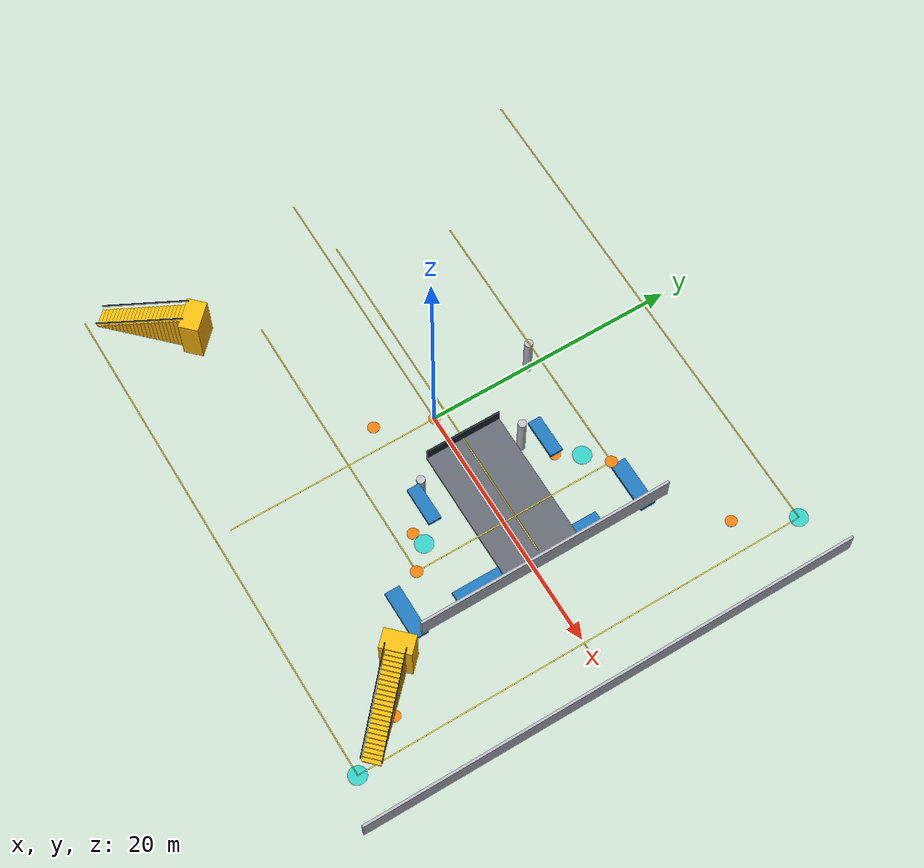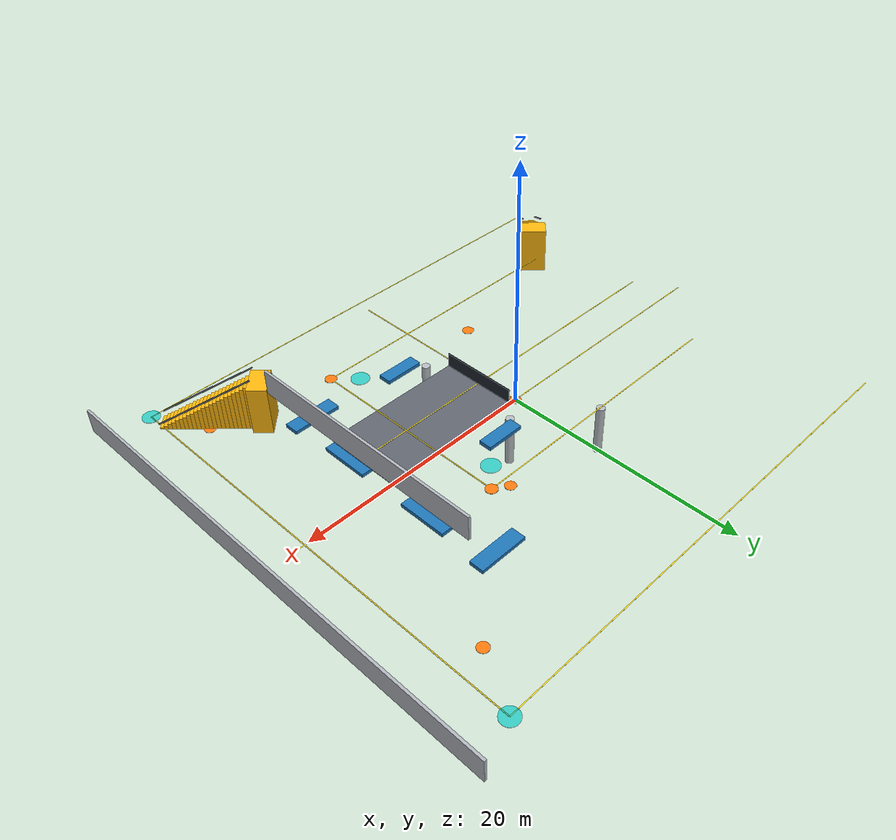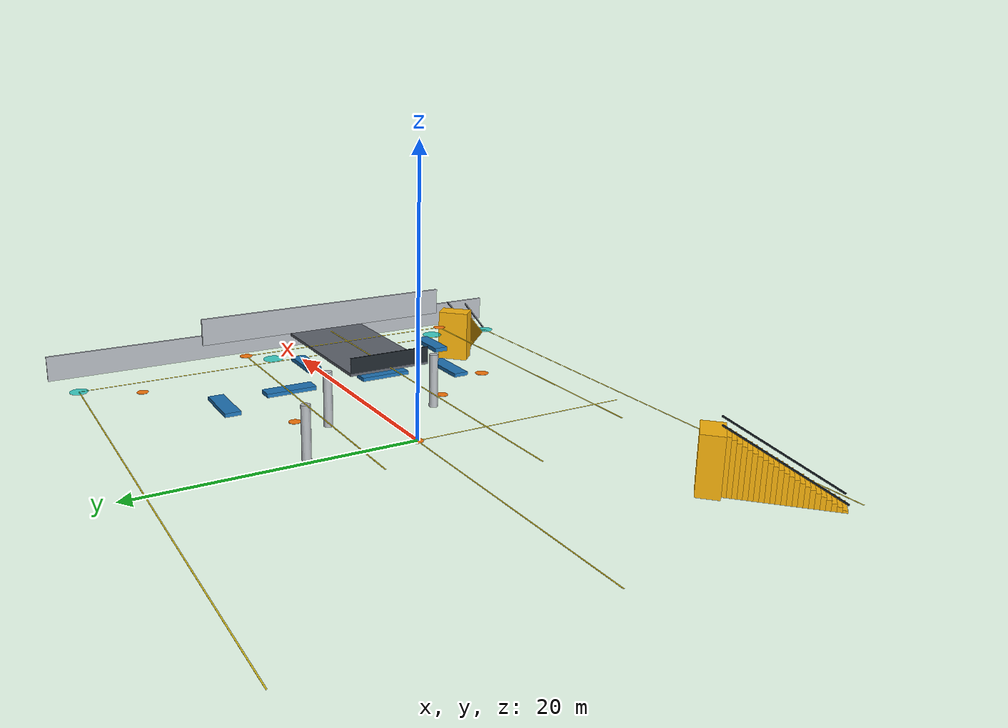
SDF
<sdf version="1.7">
 <world name="two_floor_warehouse">
  <model name="floor2_east">
   <static>true</static>
   <pose>9.5000 0.0000 3.9000 0.0000 0.0000 0.0000</pose>
   <link name="link">
    <collision name="collision"><geometry><box><size>11.0 6.0 0.2</size></box></geometry></collision>
    <visual name="visual">
     <geometry><box><size>11.0 6.0 0.2</size></box></geometry>
     <material><ambient>.38 .40 .44 1</ambient><diffuse>.38 .40 .44 1</diffuse></material>
    </visual>
   </link>
  </model>
  <model name="atrium_rail_east">
   <static>true</static>
   <pose>4.0000 0.0000 4.5500 0.0000 0.0000 0.0000</pose>
   <link name="link">
    <collision name="collision"><geometry><box><size>0.08 6.0 1.1</size></box></geometry></collision>
    <visual name="visual">
     <geometry><box><size>0.08 6.0 1.1</size></box></geometry>
     <material><ambient>.12 .15 .18 1</ambient><diffuse>.12 .15 .18 1</diffuse></material>
    </visual>
   </link>
  </model>
  <model name="f1_wall_e">
   <static>true</static>
   <pose>24.0000 0.0000 1.0000 0.0000 0.0000 0.0000</pose>
   <link name="link">
    <collision name="collision"><geometry><box><size>0.2 40.0 2</size></box></geometry></collision>
    <visual name="visual">
     <geometry><box><size>0.2 40.0 2</size></box></geometry>
     <material><ambient>.7 .72 .75 1</ambient><diffuse>.7 .72 .75 1</diffuse></material>
    </visual>
   </link>
  </model>
  <model name="f2_wall_e">
   <static>true</static>
   <pose>15.0000 0.0000 5.0000 0.0000 0.0000 0.0000</pose>
   <link name="link">
    <collision name="collision"><geometry><box><size>0.2 20.0 2</size></box></geometry></collision>
    <visual name="visual">
     <geometry><box><size>0.2 20.0 2</size></box></geometry>
     <material><ambient>.7 .72 .75 1</ambient><diffuse>.7 .72 .75 1</diffuse></material>
    </visual>
   </link>
  </model>
  <model name="stair_sw">
   <static>true</static>
   <link name="step_01">
    <pose>-19.9849 -16.9849 0.0833 0 0 0.785398</pose>
    <collision name="collision"><geometry><box><size>0.3080 1.4000 0.1667</size></box></geometry></collision>
    <visual name="visual">
     <geometry><box><size>0.3080 1.4000 0.1667</size></box></geometry>
     <material><ambient>1.0 0.72 0.05 1</ambient><diffuse>1.0 0.72 0.05 1</diffuse></material>
    </visual>
   </link>
   <link name="step_02">
    <pose>-19.7728 -16.7728 0.1667 0 0 0.785398</pose>
    <collision name="collision"><geometry><box><size>0.3080 1.4000 0.3333</size></box></geometry></collision>
    <visual name="visual">
     <geometry><box><size>0.3080 1.4000 0.3333</size></box></geometry>
     <material><ambient>1.0 0.72 0.05 1</ambient><diffuse>1.0 0.72 0.05 1</diffuse></material>
    </visual>
   </link>
   <link name="step_03">
    <pose>-19.5607 -16.5607 0.2500 0 0 0.785398</pose>
    <collision name="collision"><geometry><box><size>0.3080 1.4000 0.5000</size></box></geometry></collision>
    <visual name="visual">
     <geometry><box><size>0.3080 1.4000 0.5000</size></box></geometry>
     <material><ambient>1.0 0.72 0.05 1</ambient><diffuse>1.0 0.72 0.05 1</diffuse></material>
    </visual>
   </link>
   <link name="step_04">
    <pose>-19.3486 -16.3486 0.3333 0 0 0.785398</pose>
    <collision name="collision"><geometry><box><size>0.3080 1.4000 0.6667</size></box></geometry></collision>
    <visual name="visual">
     <geometry><box><size>0.3080 1.4000 0.6667</size></box></geometry>
     <material><ambient>1.0 0.72 0.05 1</ambient><diffuse>1.0 0.72 0.05 1</diffuse></material>
    </visual>
   </link>
   <link name="step_05">
    <pose>-19.1364 -16.1364 0.4167 0 0 0.785398</pose>
    <collision name="collision"><geometry><box><size>0.3080 1.4000 0.8333</size></box></geometry></collision>
    <visual name="visual">
     <geometry><box><size>0.3080 1.4000 0.8333</size></box></geometry>
     <material><ambient>1.0 0.72 0.05 1</ambient><diffuse>1.0 0.72 0.05 1</diffuse></material>
    </visual>
   </link>
   <link name="step_06">
    <pose>-18.9243 -15.9243 0.5000 0 0 0.785398</pose>
    <collision name="collision"><geometry><box><size>0.3080 1.4000 1.0000</size></box></geometry></collision>
    <visual name="visual">
     <geometry><box><size>0.3080 1.4000 1.0000</size></box></geometry>
     <material><ambient>1.0 0.72 0.05 1</ambient><diffuse>1.0 0.72 0.05 1</diffuse></material>
    </visual>
   </link>
   <link name="step_07">
    <pose>-18.7122 -15.7122 0.5833 0 0 0.785398</pose>
    <collision name="collision"><geometry><box><size>0.3080 1.4000 1.1667</size></box></geometry></collision>
    <visual name="visual">
     <geometry><box><size>0.3080 1.4000 1.1667</size></box></geometry>
     <material><ambient>1.0 0.72 0.05 1</ambient><diffuse>1.0 0.72 0.05 1</diffuse></material>
    </visual>
   </link>
   <link name="step_08">
    <pose>-18.5001 -15.5001 0.6667 0 0 0.785398</pose>
    <collision name="collision"><geometry><box><size>0.3080 1.4000 1.3333</size></box></geometry></collision>
    <visual name="visual">
     <geometry><box><size>0.3080 1.4000 1.3333</size></box></geometry>
     <material><ambient>1.0 0.72 0.05 1</ambient><diffuse>1.0 0.72 0.05 1</diffuse></material>
    </visual>
   </link>
   <link name="step_09">
    <pose>-18.2879 -15.2879 0.7500 0 0 0.785398</pose>
    <collision name="collision"><geometry><box><size>0.3080 1.4000 1.5000</size></box></geometry></collision>
    <visual name="visual">
     <geometry><box><size>0.3080 1.4000 1.5000</size></box></geometry>
     <material><ambient>1.0 0.72 0.05 1</ambient><diffuse>1.0 0.72 0.05 1</diffuse></material>
    </visual>
   </link>
   <link name="step_10">
    <pose>-18.0758 -15.0758 0.8333 0 0 0.785398</pose>
    <collision name="collision"><geometry><box><size>0.3080 1.4000 1.6667</size></box></geometry></collision>
    <visual name="visual">
     <geometry><box><size>0.3080 1.4000 1.6667</size></box></geometry>
     <material><ambient>1.0 0.72 0.05 1</ambient><diffuse>1.0 0.72 0.05 1</diffuse></material>
    </visual>
   </link>
   <link name="step_11">
    <pose>-17.8637 -14.8637 0.9167 0 0 0.785398</pose>
    <collision name="collision"><geometry><box><size>0.3080 1.4000 1.8333</size></box></geometry></collision>
    <visual name="visual">
     <geometry><box><size>0.3080 1.4000 1.8333</size></box></geometry>
     <material><ambient>1.0 0.72 0.05 1</ambient><diffuse>1.0 0.72 0.05 1</diffuse></material>
    </visual>
   </link>
   <link name="step_12">
    <pose>-17.6516 -14.6516 1.0000 0 0 0.785398</pose>
    <collision name="collision"><geometry><box><size>0.3080 1.4000 2.0000</size></box></geometry></collision>
    <visual name="visual">
     <geometry><box><size>0.3080 1.4000 2.0000</size></box></geometry>
     <material><ambient>1.0 0.72 0.05 1</ambient><diffuse>1.0 0.72 0.05 1</diffuse></material>
    </visual>
   </link>
   <link name="step_13">
    <pose>-17.4394 -14.4394 1.0833 0 0 0.785398</pose>
    <collision name="collision"><geometry><box><size>0.3080 1.4000 2.1667</size></box></geometry></collision>
    <visual name="visual">
     <geometry><box><size>0.3080 1.4000 2.1667</size></box></geometry>
     <material><ambient>1.0 0.72 0.05 1</ambient><diffuse>1.0 0.72 0.05 1</diffuse></material>
    </visual>
   </link>
   <link name="step_14">
    <pose>-17.2273 -14.2273 1.1667 0 0 0.785398</pose>
    <collision name="collision"><geometry><box><size>0.3080 1.4000 2.3333</size></box></geometry></collision>
    <visual name="visual">
     <geometry><box><size>0.3080 1.4000 2.3333</size></box></geometry>
     <material><ambient>1.0 0.72 0.05 1</ambient><diffuse>1.0 0.72 0.05 1</diffuse></material>
    </visual>
   </link>
   <link name="step_15">
    <pose>-17.0152 -14.0152 1.2500 0 0 0.785398</pose>
    <collision name="collision"><geometry><box><size>0.3080 1.4000 2.5000</size></box></geometry></collision>
    <visual name="visual">
     <geometry><box><size>0.3080 1.4000 2.5000</size></box></geometry>
     <material><ambient>1.0 0.72 0.05 1</ambient><diffuse>1.0 0.72 0.05 1</diffuse></material>
    </visual>
   </link>
   <link name="step_16">
    <pose>-16.8031 -13.8031 1.3333 0 0 0.785398</pose>
    <collision name="collision"><geometry><box><size>0.3080 1.4000 2.6667</size></box></geometry></collision>
    <visual name="visual">
     <geometry><box><size>0.3080 1.4000 2.6667</size></box></geometry>
     <material><ambient>1.0 0.72 0.05 1</ambient><diffuse>1.0 0.72 0.05 1</diffuse></material>
    </visual>
   </link>
   <link name="step_17">
    <pose>-16.5909 -13.5909 1.4167 0 0 0.785398</pose>
    <collision name="collision"><geometry><box><size>0.3080 1.4000 2.8333</size></box></geometry></collision>
    <visual name="visual">
     <geometry><box><size>0.3080 1.4000 2.8333</size></box></geometry>
     <material><ambient>1.0 0.72 0.05 1</ambient><diffuse>1.0 0.72 0.05 1</diffuse></material>
    </visual>
   </link>
   <link name="step_18">
    <pose>-16.3788 -13.3788 1.5000 0 0 0.785398</pose>
    <collision name="collision"><geometry><box><size>0.3080 1.4000 3.0000</size></box></geometry></collision>
    <visual name="visual">
     <geometry><box><size>0.3080 1.4000 3.0000</size></box></geometry>
     <material><ambient>1.0 0.72 0.05 1</ambient><diffuse>1.0 0.72 0.05 1</diffuse></material>
    </visual>
   </link>
   <link name="step_19">
    <pose>-16.1667 -13.1667 1.5833 0 0 0.785398</pose>
    <collision name="collision"><geometry><box><size>0.3080 1.4000 3.1667</size></box></geometry></collision>
    <visual name="visual">
     <geometry><box><size>0.3080 1.4000 3.1667</size></box></geometry>
     <material><ambient>1.0 0.72 0.05 1</ambient><diffuse>1.0 0.72 0.05 1</diffuse></material>
    </visual>
   </link>
   <link name="step_20">
    <pose>-15.9546 -12.9546 1.6667 0 0 0.785398</pose>
    <collision name="collision"><geometry><box><size>0.3080 1.4000 3.3333</size></box></geometry></collision>
    <visual name="visual">
     <geometry><box><size>0.3080 1.4000 3.3333</size></box></geometry>
     <material><ambient>1.0 0.72 0.05 1</ambient><diffuse>1.0 0.72 0.05 1</diffuse></material>
    </visual>
   </link>
   <link name="step_21">
    <pose>-15.7424 -12.7424 1.7500 0 0 0.785398</pose>
    <collision name="collision"><geometry><box><size>0.3080 1.4000 3.5000</size></box></geometry></collision>
    <visual name="visual">
     <geometry><box><size>0.3080 1.4000 3.5000</size></box></geometry>
     <material><ambient>1.0 0.72 0.05 1</ambient><diffuse>1.0 0.72 0.05 1</diffuse></material>
    </visual>
   </link>
   <link name="step_22">
    <pose>-15.5303 -12.5303 1.8333 0 0 0.785398</pose>
    <collision name="collision"><geometry><box><size>0.3080 1.4000 3.6667</size></box></geometry></collision>
    <visual name="visual">
     <geometry><box><size>0.3080 1.4000 3.6667</size></box></geometry>
     <material><ambient>1.0 0.72 0.05 1</ambient><diffuse>1.0 0.72 0.05 1</diffuse></material>
    </visual>
   </link>
   <link name="step_23">
    <pose>-15.3182 -12.3182 1.9167 0 0 0.785398</pose>
    <collision name="collision"><geometry><box><size>0.3080 1.4000 3.8333</size></box></geometry></collision>
    <visual name="visual">
     <geometry><box><size>0.3080 1.4000 3.8333</size></box></geometry>
     <material><ambient>1.0 0.72 0.05 1</ambient><diffuse>1.0 0.72 0.05 1</diffuse></material>
    </visual>
   </link>
   <link name="step_24">
    <pose>-14.6818 -11.6818 2.0000 0 0 0.785398</pose>
    <collision name="collision"><geometry><box><size>1.5080 2.4000 4.0000</size></box></geometry></collision>
    <visual name="visual">
     <geometry><box><size>1.5080 2.4000 4.0000</size></box></geometry>
     <material><ambient>1.0 0.72 0.05 1</ambient><diffuse>1.0 0.72 0.05 1</diffuse></material>
    </visual>
   </link>
   <link name="rail_-1">
    <pose>-17.0081 -15.0829 2.55 0 -0.507113 0.785398</pose>
    <collision name="collision"><geometry><box><size>8.2363 0.08 0.10</size></box></geometry></collision>
    <visual name="visual">
     <geometry><box><size>8.2363 0.08 0.10</size></box></geometry>
     <material><ambient>0.12 0.15 0.18 1</ambient></material>
    </visual>
   </link>
   <link name="rail_+1">
    <pose>-18.0829 -14.0081 2.55 0 -0.507113 0.785398</pose>
    <collision name="collision"><geometry><box><size>8.2363 0.08 0.10</size></box></geometry></collision>
    <visual name="visual">
     <geometry><box><size>8.2363 0.08 0.10</size></box></geometry>
     <material><ambient>0.12 0.15 0.18 1</ambient></material>
    </visual>
   </link>
  </model>
  <model name="stair_se">
   <static>true</static>
   <link name="step_01">
    <pose>19.9849 -16.9849 0.0833 0 0 2.356194</pose>
    <collision name="collision"><geometry><box><size>0.3080 1.4000 0.1667</size></box></geometry></collision>
    <visual name="visual">
     <geometry><box><size>0.3080 1.4000 0.1667</size></box></geometry>
     <material><ambient>1.0 0.72 0.05 1</ambient><diffuse>1.0 0.72 0.05 1</diffuse></material>
    </visual>
   </link>
   <link name="step_02">
    <pose>19.7728 -16.7728 0.1667 0 0 2.356194</pose>
    <collision name="collision"><geometry><box><size>0.3080 1.4000 0.3333</size></box></geometry></collision>
    <visual name="visual">
     <geometry><box><size>0.3080 1.4000 0.3333</size></box></geometry>
     <material><ambient>1.0 0.72 0.05 1</ambient><diffuse>1.0 0.72 0.05 1</diffuse></material>
    </visual>
   </link>
   <link name="step_03">
    <pose>19.5607 -16.5607 0.2500 0 0 2.356194</pose>
    <collision name="collision"><geometry><box><size>0.3080 1.4000 0.5000</size></box></geometry></collision>
    <visual name="visual">
     <geometry><box><size>0.3080 1.4000 0.5000</size></box></geometry>
     <material><ambient>1.0 0.72 0.05 1</ambient><diffuse>1.0 0.72 0.05 1</diffuse></material>
    </visual>
   </link>
   <link name="step_04">
    <pose>19.3486 -16.3486 0.3333 0 0 2.356194</pose>
    <collision name="collision"><geometry><box><size>0.3080 1.4000 0.6667</size></box></geometry></collision>
    <visual name="visual">
     <geometry><box><size>0.3080 1.4000 0.6667</size></box></geometry>
     <material><ambient>1.0 0.72 0.05 1</ambient><diffuse>1.0 0.72 0.05 1</diffuse></material>
    </visual>
   </link>
   <link name="step_05">
    <pose>19.1364 -16.1364 0.4167 0 0 2.356194</pose>
    <collision name="collision"><geometry><box><size>0.3080 1.4000 0.8333</size></box></geometry></collision>
    <visual name="visual">
     <geometry><box><size>0.3080 1.4000 0.8333</size></box></geometry>
     <material><ambient>1.0 0.72 0.05 1</ambient><diffuse>1.0 0.72 0.05 1</diffuse></material>
    </visual>
   </link>
   <link name="step_06">
    <pose>18.9243 -15.9243 0.5000 0 0 2.356194</pose>
    <collision name="collision"><geometry><box><size>0.3080 1.4000 1.0000</size></box></geometry></collision>
    <visual name="visual">
     <geometry><box><size>0.3080 1.4000 1.0000</size></box></geometry>
     <material><ambient>1.0 0.72 0.05 1</ambient><diffuse>1.0 0.72 0.05 1</diffuse></material>
    </visual>
   </link>
   <link name="step_07">
    <pose>18.7122 -15.7122 0.5833 0 0 2.356194</pose>
    <collision name="collision"><geometry><box><size>0.3080 1.4000 1.1667</size></box></geometry></collision>
    <visual name="visual">
     <geometry><box><size>0.3080 1.4000 1.1667</size></box></geometry>
     <material><ambient>1.0 0.72 0.05 1</ambient><diffuse>1.0 0.72 0.05 1</diffuse></material>
    </visual>
   </link>
   <link name="step_08">
    <pose>18.5001 -15.5001 0.6667 0 0 2.356194</pose>
    <collision name="collision"><geometry><box><size>0.3080 1.4000 1.3333</size></box></geometry></collision>
    <visual name="visual">
     <geometry><box><size>0.3080 1.4000 1.3333</size></box></geometry>
     <material><ambient>1.0 0.72 0.05 1</ambient><diffuse>1.0 0.72 0.05 1</diffuse></material>
    </visual>
   </link>
   <link name="step_09">
    <pose>18.2879 -15.2879 0.7500 0 0 2.356194</pose>
    <collision name="collision"><geometry><box><size>0.3080 1.4000 1.5000</size></box></geometry></collision>
    <visual name="visual">
     <geometry><box><size>0.3080 1.4000 1.5000</size></box></geometry>
     <material><ambient>1.0 0.72 0.05 1</ambient><diffuse>1.0 0.72 0.05 1</diffuse></material>
    </visual>
   </link>
   <link name="step_10">
    <pose>18.0758 -15.0758 0.8333 0 0 2.356194</pose>
    <collision name="collision"><geometry><box><size>0.3080 1.4000 1.6667</size></box></geometry></collision>
    <visual name="visual">
     <geometry><box><size>0.3080 1.4000 1.6667</size></box></geometry>
     <material><ambient>1.0 0.72 0.05 1</ambient><diffuse>1.0 0.72 0.05 1</diffuse></material>
    </visual>
   </link>
   <link name="step_11">
    <pose>17.8637 -14.8637 0.9167 0 0 2.356194</pose>
    <collision name="collision"><geometry><box><size>0.3080 1.4000 1.8333</size></box></geometry></collision>
    <visual name="visual">
     <geometry><box><size>0.3080 1.4000 1.8333</size></box></geometry>
     <material><ambient>1.0 0.72 0.05 1</ambient><diffuse>1.0 0.72 0.05 1</diffuse></material>
    </visual>
   </link>
   <link name="step_12">
    <pose>17.6516 -14.6516 1.0000 0 0 2.356194</pose>
    <collision name="collision"><geometry><box><size>0.3080 1.4000 2.0000</size></box></geometry></collision>
    <visual name="visual">
     <geometry><box><size>0.3080 1.4000 2.0000</size></box></geometry>
     <material><ambient>1.0 0.72 0.05 1</ambient><diffuse>1.0 0.72 0.05 1</diffuse></material>
    </visual>
   </link>
   <link name="step_13">
    <pose>17.4394 -14.4394 1.0833 0 0 2.356194</pose>
    <collision name="collision"><geometry><box><size>0.3080 1.4000 2.1667</size></box></geometry></collision>
    <visual name="visual">
     <geometry><box><size>0.3080 1.4000 2.1667</size></box></geometry>
     <material><ambient>1.0 0.72 0.05 1</ambient><diffuse>1.0 0.72 0.05 1</diffuse></material>
    </visual>
   </link>
   <link name="step_14">
    <pose>17.2273 -14.2273 1.1667 0 0 2.356194</pose>
    <collision name="collision"><geometry><box><size>0.3080 1.4000 2.3333</size></box></geometry></collision>
    <visual name="visual">
     <geometry><box><size>0.3080 1.4000 2.3333</size></box></geometry>
     <material><ambient>1.0 0.72 0.05 1</ambient><diffuse>1.0 0.72 0.05 1</diffuse></material>
    </visual>
   </link>
   <link name="step_15">
    <pose>17.0152 -14.0152 1.2500 0 0 2.356194</pose>
    <collision name="collision"><geometry><box><size>0.3080 1.4000 2.5000</size></box></geometry></collision>
    <visual name="visual">
     <geometry><box><size>0.3080 1.4000 2.5000</size></box></geometry>
     <material><ambient>1.0 0.72 0.05 1</ambient><diffuse>1.0 0.72 0.05 1</diffuse></material>
    </visual>
   </link>
   <link name="step_16">
    <pose>16.8031 -13.8031 1.3333 0 0 2.356194</pose>
    <collision name="collision"><geometry><box><size>0.3080 1.4000 2.6667</size></box></geometry></collision>
    <visual name="visual">
     <geometry><box><size>0.3080 1.4000 2.6667</size></box></geometry>
     <material><ambient>1.0 0.72 0.05 1</ambient><diffuse>1.0 0.72 0.05 1</diffuse></material>
    </visual>
   </link>
   <link name="step_17">
    <pose>16.5909 -13.5909 1.4167 0 0 2.356194</pose>
    <collision name="collision"><geometry><box><size>0.3080 1.4000 2.8333</size></box></geometry></collision>
    <visual name="visual">
     <geometry><box><size>0.3080 1.4000 2.8333</size></box></geometry>
     <material><ambient>1.0 0.72 0.05 1</ambient><diffuse>1.0 0.72 0.05 1</diffuse></material>
    </visual>
   </link>
   <link name="step_18">
    <pose>16.3788 -13.3788 1.5000 0 0 2.356194</pose>
    <collision name="collision"><geometry><box><size>0.3080 1.4000 3.0000</size></box></geometry></collision>
    <visual name="visual">
     <geometry><box><size>0.3080 1.4000 3.0000</size></box></geometry>
     <material><ambient>1.0 0.72 0.05 1</ambient><diffuse>1.0 0.72 0.05 1</diffuse></material>
    </visual>
   </link>
   <link name="step_19">
    <pose>16.1667 -13.1667 1.5833 0 0 2.356194</pose>
    <collision name="collision"><geometry><box><size>0.3080 1.4000 3.1667</size></box></geometry></collision>
    <visual name="visual">
     <geometry><box><size>0.3080 1.4000 3.1667</size></box></geometry>
     <material><ambient>1.0 0.72 0.05 1</ambient><diffuse>1.0 0.72 0.05 1</diffuse></material>
    </visual>
   </link>
   <link name="step_20">
    <pose>15.9546 -12.9546 1.6667 0 0 2.356194</pose>
    <collision name="collision"><geometry><box><size>0.3080 1.4000 3.3333</size></box></geometry></collision>
    <visual name="visual">
     <geometry><box><size>0.3080 1.4000 3.3333</size></box></geometry>
     <material><ambient>1.0 0.72 0.05 1</ambient><diffuse>1.0 0.72 0.05 1</diffuse></material>
    </visual>
   </link>
   <link name="step_21">
    <pose>15.7424 -12.7424 1.7500 0 0 2.356194</pose>
    <collision name="collision"><geometry><box><size>0.3080 1.4000 3.5000</size></box></geometry></collision>
    <visual name="visual">
     <geometry><box><size>0.3080 1.4000 3.5000</size></box></geometry>
     <material><ambient>1.0 0.72 0.05 1</ambient><diffuse>1.0 0.72 0.05 1</diffuse></material>
    </visual>
   </link>
   <link name="step_22">
    <pose>15.5303 -12.5303 1.8333 0 0 2.356194</pose>
    <collision name="collision"><geometry><box><size>0.3080 1.4000 3.6667</size></box></geometry></collision>
    <visual name="visual">
     <geometry><box><size>0.3080 1.4000 3.6667</size></box></geometry>
     <material><ambient>1.0 0.72 0.05 1</ambient><diffuse>1.0 0.72 0.05 1</diffuse></material>
    </visual>
   </link>
   <link name="step_23">
    <pose>15.3182 -12.3182 1.9167 0 0 2.356194</pose>
    <collision name="collision"><geometry><box><size>0.3080 1.4000 3.8333</size></box></geometry></collision>
    <visual name="visual">
     <geometry><box><size>0.3080 1.4000 3.8333</size></box></geometry>
     <material><ambient>1.0 0.72 0.05 1</ambient><diffuse>1.0 0.72 0.05 1</diffuse></material>
    </visual>
   </link>
   <link name="step_24">
    <pose>14.6818 -11.6818 2.0000 0 0 2.356194</pose>
    <collision name="collision"><geometry><box><size>1.5080 2.4000 4.0000</size></box></geometry></collision>
    <visual name="visual">
     <geometry><box><size>1.5080 2.4000 4.0000</size></box></geometry>
     <material><ambient>1.0 0.72 0.05 1</ambient><diffuse>1.0 0.72 0.05 1</diffuse></material>
    </visual>
   </link>
   <link name="rail_-1">
    <pose>18.0829 -14.0081 2.55 0 -0.507113 2.356194</pose>
    <collision name="collision"><geometry><box><size>8.2363 0.08 0.10</size></box></geometry></collision>
    <visual name="visual">
     <geometry><box><size>8.2363 0.08 0.10</size></box></geometry>
     <material><ambient>0.12 0.15 0.18 1</ambient></material>
    </visual>
   </link>
   <link name="rail_+1">
    <pose>17.0081 -15.0829 2.55 0 -0.507113 2.356194</pose>
    <collision name="collision"><geometry><box><size>8.2363 0.08 0.10</size></box></geometry></collision>
    <visual name="visual">
     <geometry><box><size>8.2363 0.08 0.10</size></box></geometry>
     <material><ambient>0.12 0.15 0.18 1</ambient></material>
    </visual>
   </link>
  </model>
  <model name="task_f1_ne_outer">
   <static>true</static>
   <pose>18.0000 14.0000 0.0150 0.0000 0.0000 0.0000</pose>
   <link name="link">
    <visual name="visual">
     <geometry><cylinder><radius>0.45</radius><length>0.03</length></cylinder></geometry>
     <material><ambient>1 .48 .05 1</ambient></material>
    </visual>
   </link>
  </model>
  <model name="task_f1_se_outer">
   <static>true</static>
   <pose>18.0000 -14.0000 0.0150 0.0000 0.0000 0.0000</pose>
   <link name="link">
    <visual name="visual">
     <geometry><cylinder><radius>0.45</radius><length>0.03</length></cylinder></geometry>
     <material><ambient>1 .48 .05 1</ambient></material>
    </visual>
   </link>
  </model>
  <model name="task_f1_ne_inner">
   <static>true</static>
   <pose>7.0000 6.0000 0.0150 0.0000 0.0000 0.0000</pose>
   <link name="link">
    <visual name="visual">
     <geometry><cylinder><radius>0.45</radius><length>0.03</length></cylinder></geometry>
     <material><ambient>1 .48 .05 1</ambient></material>
    </visual>
   </link>
  </model>
  <model name="task_f1_se_inner">
   <static>true</static>
   <pose>7.0000 -6.0000 0.0150 0.0000 0.0000 0.0000</pose>
   <link name="link">
    <visual name="visual">
     <geometry><cylinder><radius>0.45</radius><length>0.03</length></cylinder></geometry>
     <material><ambient>1 .48 .05 1</ambient></material>
    </visual>
   </link>
  </model>
  <model name="task_f1_center">
   <static>true</static>
   <pose>0.0000 0.0000 0.0150 0.0000 0.0000 0.0000</pose>
   <link name="link">
    <visual name="visual">
     <geometry><cylinder><radius>0.45</radius><length>0.03</length></cylinder></geometry>
     <material><ambient>1 .48 .05 1</ambient></material>
    </visual>
   </link>
  </model>
  <model name="task_f2_ne">
   <static>true</static>
   <pose>11.0000 8.0000 4.0150 0.0000 0.0000 0.0000</pose>
   <link name="link">
    <visual name="visual">
     <geometry><cylinder><radius>0.45</radius><length>0.03</length></cylinder></geometry>
     <material><ambient>1 .48 .05 1</ambient></material>
    </visual>
   </link>
  </model>
  <model name="task_f2_se">
   <static>true</static>
   <pose>11.0000 -8.0000 4.0150 0.0000 0.0000 0.0000</pose>
   <link name="link">
    <visual name="visual">
     <geometry><cylinder><radius>0.45</radius><length>0.03</length></cylinder></geometry>
     <material><ambient>1 .48 .05 1</ambient></material>
    </visual>
   </link>
  </model>
  <model name="task_f2_center">
   <static>true</static>
   <pose>0.0000 -5.0000 4.0150 0.0000 0.0000 0.0000</pose>
   <link name="link">
    <visual name="visual">
     <geometry><cylinder><radius>0.45</radius><length>0.03</length></cylinder></geometry>
     <material><ambient>1 .48 .05 1</ambient></material>
    </visual>
   </link>
  </model>
  <model name="handover_stair_ne_f1_send">
   <static>true</static>
   <pose>20.3000 18.3000 0.0200 0.0000 0.0000 0.0000</pose>
   <link name="link">
    <visual name="visual">
     <geometry><cylinder><radius>0.7</radius><length>0.04</length></cylinder></geometry>
     <material><ambient>0 .8 .78 .7</ambient></material>
    </visual>
   </link>
  </model>
  <model name="handover_stair_ne_f2_receive">
   <static>true</static>
   <pose>9.5000 6.5000 4.0200 0.0000 0.0000 0.0000</pose>
   <link name="link">
    <visual name="visual">
     <geometry><cylinder><radius>0.7</radius><length>0.04</length></cylinder></geometry>
     <material><ambient>0 .8 .78 .7</ambient></material>
    </visual>
   </link>
  </model>
  <model name="handover_stair_se_f1_send">
   <static>true</static>
   <pose>20.3000 -18.3000 0.0200 0.0000 0.0000 0.0000</pose>
   <link name="link">
    <visual name="visual">
     <geometry><cylinder><radius>0.7</radius><length>0.04</length></cylinder></geometry>
     <material><ambient>0 .8 .78 .7</ambient></material>
    </visual>
   </link>
  </model>
  <model name="handover_stair_se_f2_receive">
   <static>true</static>
   <pose>9.5000 -6.5000 4.0200 0.0000 0.0000 0.0000</pose>
   <link name="link">
    <visual name="visual">
     <geometry><cylinder><radius>0.7</radius><length>0.04</length></cylinder></geometry>
     <material><ambient>0 .8 .78 .7</ambient></material>
    </visual>
   </link>
  </model>
  <model name="f1_platform_ne_a">
   <static>true</static>
   <pose>12.0000 9.5000 0.1500 0.0000 0.0000 0.0000</pose>
   <link name="link">
    <collision name="collision"><geometry><box><size>4.0 1.2 0.3</size></box></geometry></collision>
    <visual name="visual">
     <geometry><box><size>4.0 1.2 0.3</size></box></geometry>
     <material><ambient>.12 .46 .72 1</ambient><diffuse>.12 .46 .72 1</diffuse></material>
    </visual>
   </link>
  </model>
  <model name="f1_platform_se_a">
   <static>true</static>
   <pose>12.0000 -9.5000 0.1500 0.0000 0.0000 0.0000</pose>
   <link name="link">
    <collision name="collision"><geometry><box><size>4.0 1.2 0.3</size></box></geometry></collision>
    <visual name="visual">
     <geometry><box><size>4.0 1.2 0.3</size></box></geometry>
     <material><ambient>.12 .46 .72 1</ambient><diffuse>.12 .46 .72 1</diffuse></material>
    </visual>
   </link>
  </model>
  <model name="f1_platform_e_b">
   <static>true</static>
   <pose>13.0000 4.0000 0.1500 0.0000 0.0000 0.0000</pose>
   <link name="link">
    <collision name="collision"><geometry><box><size>1.2 4.0 0.3</size></box></geometry></collision>
    <visual name="visual">
     <geometry><box><size>1.2 4.0 0.3</size></box></geometry>
     <material><ambient>.12 .46 .72 1</ambient><diffuse>.12 .46 .72 1</diffuse></material>
    </visual>
   </link>
  </model>
  <model name="f1_platform_e_c">
   <static>true</static>
   <pose>13.0000 -4.0000 0.1500 0.0000 0.0000 0.0000</pose>
   <link name="link">
    <collision name="collision"><geometry><box><size>1.2 4.0 0.3</size></box></geometry></collision>
    <visual name="visual">
     <geometry><box><size>1.2 4.0 0.3</size></box></geometry>
     <material><ambient>.12 .46 .72 1</ambient><diffuse>.12 .46 .72 1</diffuse></material>
    </visual>
   </link>
  </model>
  <model name="f2_platform_e_n">
   <static>true</static>
   <pose>7.0000 5.0000 4.1500 0.0000 0.0000 0.0000</pose>
   <link name="link">
    <collision name="collision"><geometry><box><size>3.0 1.0 0.3</size></box></geometry></collision>
    <visual name="visual">
     <geometry><box><size>3.0 1.0 0.3</size></box></geometry>
     <material><ambient>.12 .46 .72 1</ambient><diffuse>.12 .46 .72 1</diffuse></material>
    </visual>
   </link>
  </model>
  <model name="f2_platform_e_s">
   <static>true</static>
   <pose>7.0000 -5.0000 4.1500 0.0000 0.0000 0.0000</pose>
   <link name="link">
    <collision name="collision"><geometry><box><size>3.0 1.0 0.3</size></box></geometry></collision>
    <visual name="visual">
     <geometry><box><size>3.0 1.0 0.3</size></box></geometry>
     <material><ambient>.12 .46 .72 1</ambient><diffuse>.12 .46 .72 1</diffuse></material>
    </visual>
   </link>
  </model>
  <model name="column_ne">
   <static>true</static>
   <pose>5.2000 4.2000 2.0000 0.0000 0.0000 0.0000</pose>
   <link name="link">
    <collision name="collision">
     <geometry><cylinder><radius>0.3200</radius><length>4.0000</length></cylinder></geometry>
    </collision>
    <visual name="visual">
     <geometry><cylinder><radius>0.3200</radius><length>4.0000</length></cylinder></geometry>
     <material><ambient>0.72 0.74 0.76 1</ambient><diffuse>0.72 0.74 0.76 1</diffuse></material>
    </visual>
   </link>
  </model>
  <model name="column_se">
   <static>true</static>
   <pose>5.2000 -4.2000 2.0000 0.0000 0.0000 0.0000</pose>
   <link name="link">
    <collision name="collision">
     <geometry><cylinder><radius>0.3200</radius><length>4.0000</length></cylinder></geometry>
    </collision>
    <visual name="visual">
     <geometry><cylinder><radius>0.3200</radius><length>4.0000</length></cylinder></geometry>
     <material><ambient>0.72 0.74 0.76 1</ambient><diffuse>0.72 0.74 0.76 1</diffuse></material>
    </visual>
   </link>
  </model>
  <model name="column_north_center">
   <static>true</static>
   <pose>0.0000 8.0000 2.0000 0.0000 0.0000 0.0000</pose>
   <link name="link">
    <collision name="collision">
     <geometry><cylinder><radius>0.3200</radius><length>4.0000</length></cylinder></geometry>
    </collision>
    <visual name="visual">
     <geometry><cylinder><radius>0.3200</radius><length>4.0000</length></cylinder></geometry>
     <material><ambient>0.72 0.74 0.76 1</ambient><diffuse>0.72 0.74 0.76 1</diffuse></material>
    </visual>
   </link>
  </model>
  <model name="lane_floor1_ring_0">
   <static>true</static>
   <pose>0.0000 -18.3000 0.0150 0 0 0.000000</pose>
   <link name="link">
    <visual name="visual">
     <geometry><box><size>40.6000 .08 .01</size></box></geometry>
     <material><ambient>0.95 0.85 0.12 1</ambient></material>
    </visual>
   </link>
  </model>
  <model name="lane_floor1_ring_1">
   <static>true</static>
   <pose>20.3000 0.0000 0.0150 0 0 1.570796</pose>
   <link name="link">
    <visual name="visual">
     <geometry><box><size>36.6000 .08 .01</size></box></geometry>
     <material><ambient>0.95 0.85 0.12 1</ambient></material>
    </visual>
   </link>
  </model>
  <model name="lane_floor1_ring_2">
   <static>true</static>
   <pose>0.0000 18.3000 0.0150 0 0 3.141593</pose>
   <link name="link">
    <visual name="visual">
     <geometry><box><size>40.6000 .08 .01</size></box></geometry>
     <material><ambient>0.95 0.85 0.12 1</ambient></material>
    </visual>
   </link>
  </model>
  <model name="lane_floor1_cross_x_0">
   <static>true</static>
   <pose>0.0000 0.0000 0.0150 0 0 0.000000</pose>
   <link name="link">
    <visual name="visual">
     <geometry><box><size>42.0000 .08 .01</size></box></geometry>
     <material><ambient>0.95 0.85 0.12 1</ambient></material>
    </visual>
   </link>
  </model>
  <model name="lane_floor1_cross_y_0">
   <static>true</static>
   <pose>0.0000 0.0000 0.0150 0 0 1.570796</pose>
   <link name="link">
    <visual name="visual">
     <geometry><box><size>34.0000 .08 .01</size></box></geometry>
     <material><ambient>0.95 0.85 0.12 1</ambient></material>
    </visual>
   </link>
  </model>
  <model name="lane_floor2_ring_0">
   <static>true</static>
   <pose>0.0000 -8.0000 4.0150 0 0 0.000000</pose>
   <link name="link">
    <visual name="visual">
     <geometry><box><size>22.0000 .08 .01</size></box></geometry>
     <material><ambient>0.95 0.85 0.12 1</ambient></material>
    </visual>
   </link>
  </model>
  <model name="lane_floor2_ring_1">
   <static>true</static>
   <pose>11.0000 0.0000 4.0150 0 0 1.570796</pose>
   <link name="link">
    <visual name="visual">
     <geometry><box><size>16.0000 .08 .01</size></box></geometry>
     <material><ambient>0.95 0.85 0.12 1</ambient></material>
    </visual>
   </link>
  </model>
  <model name="lane_floor2_ring_2">
   <static>true</static>
   <pose>0.0000 8.0000 4.0150 0 0 3.141593</pose>
   <link name="link">
    <visual name="visual">
     <geometry><box><size>22.0000 .08 .01</size></box></geometry>
     <material><ambient>0.95 0.85 0.12 1</ambient></material>
    </visual>
   </link>
  </model>
  <model name="lane_floor2_cross_x_0">
   <static>true</static>
   <pose>0.0000 0.0000 4.0150 0 0 0.000000</pose>
   <link name="link">
    <visual name="visual">
     <geometry><box><size>28.0000 .08 .01</size></box></geometry>
     <material><ambient>0.95 0.85 0.12 1</ambient></material>
    </visual>
   </link>
  </model>
 </world>
</sdf>
